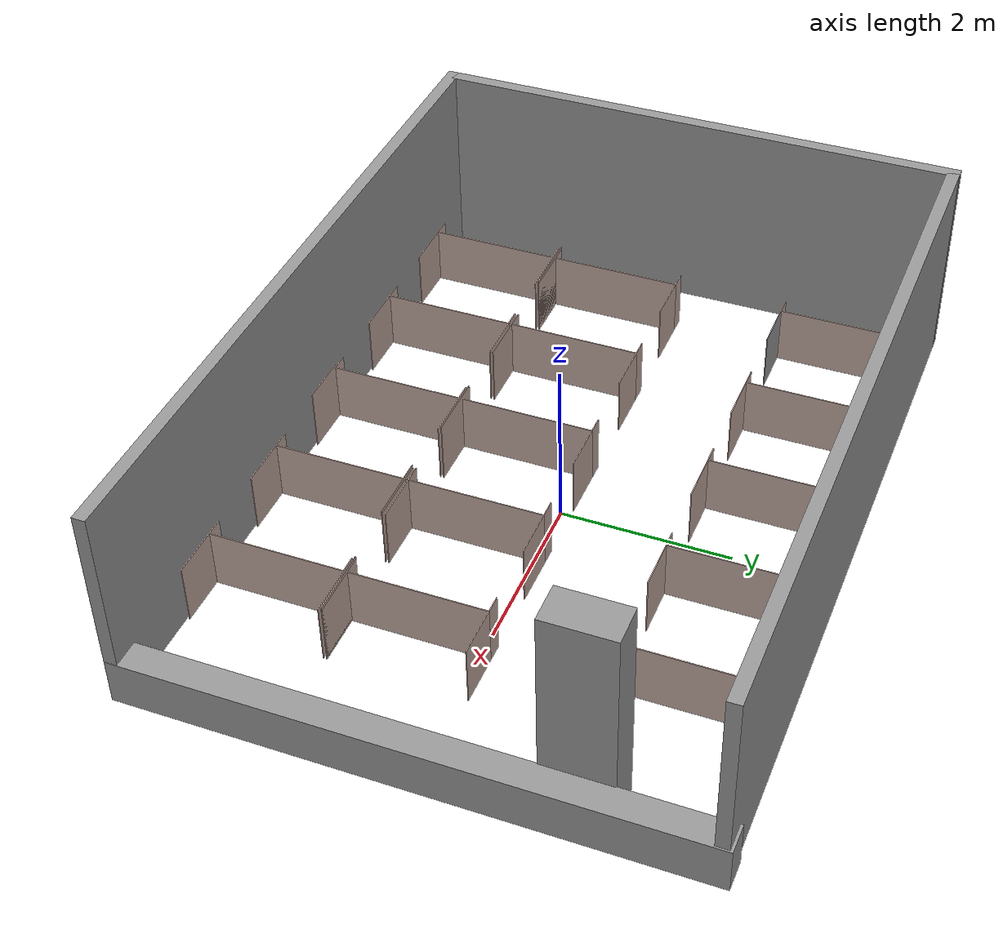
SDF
<?xml version='1.0'?>
<sdf version='1.6'>
  <model name='change_class7'>
    <pose frame=''>-0.212901 0.004877 0 0 -0 0</pose>
    <link name='Wall_10'>
      <collision name='Wall_10_Collision'>
        <geometry>
          <box>
            <size>0.598 0.01 0.715</size>
          </box>
        </geometry>
        <pose frame=''>0 0 0.3575 0 -0 0</pose>
      </collision>
      <visual name='Wall_10_Visual'>
        <pose frame=''>0 0 0.3575 0 -0 0</pose>
        <geometry>
          <box>
            <size>0.598 0.01 0.715</size>
          </box>
        </geometry>
        <material>
          <script>
            <uri>file://media/materials/scripts/gazebo.material</uri>
            <name>Gazebo/Grey</name>
          </script>
          <ambient>0.760784 0.662745 0.627451 1</ambient>
        </material>
      </visual>
      <pose frame=''>-0.159099 1.47212 0 0 -0 0</pose>
    </link>
    <link name='Wall_12'>
      <collision name='Wall_12_Collision'>
        <geometry>
          <box>
            <size>0.598 0.01 0.715</size>
          </box>
        </geometry>
        <pose frame=''>0 0 0.3575 0 -0 0</pose>
      </collision>
      <visual name='Wall_12_Visual'>
        <pose frame=''>0 0 0.3575 0 -0 0</pose>
        <geometry>
          <box>
            <size>0.598 0.01 0.715</size>
          </box>
        </geometry>
        <material>
          <script>
            <uri>file://media/materials/scripts/gazebo.material</uri>
            <name>Gazebo/Grey</name>
          </script>
          <ambient>0.760784 0.662745 0.627451 1</ambient>
        </material>
      </visual>
      <pose frame=''>1.2779 1.47212 0 0 -0 0</pose>
    </link>
    <link name='Wall_138'>
      <collision name='Wall_138_Collision'>
        <geometry>
          <box>
            <size>0.593 0.01 0.715</size>
          </box>
        </geometry>
        <pose frame=''>0 0 0.3575 0 -0 0</pose>
      </collision>
      <visual name='Wall_138_Visual'>
        <pose frame=''>0 0 0.3575 0 -0 0</pose>
        <geometry>
          <box>
            <size>0.593 0.01 0.715</size>
          </box>
        </geometry>
        <material>
          <script>
            <uri>file://media/materials/scripts/gazebo.material</uri>
            <name>Gazebo/Grey</name>
          </script>
          <ambient>0.760784 0.662745 0.627451 1</ambient>
        </material>
      </visual>
      <pose frame=''>-3.0756 3.04612 0 0 -0 0</pose>
    </link>
    <link name='Wall_14'>
      <collision name='Wall_14_Collision'>
        <geometry>
          <box>
            <size>0.61 0.01 0.715</size>
          </box>
        </geometry>
        <pose frame=''>0 0 0.3575 0 -0 0</pose>
      </collision>
      <visual name='Wall_14_Visual'>
        <pose frame=''>0 0 0.3575 0 -0 0</pose>
        <geometry>
          <box>
            <size>0.61 0.01 0.715</size>
          </box>
        </geometry>
        <material>
          <script>
            <uri>file://media/materials/scripts/gazebo.material</uri>
            <name>Gazebo/Grey</name>
          </script>
          <ambient>0.760784 0.662745 0.627451 1</ambient>
        </material>
      </visual>
      <pose frame=''>2.7759 1.47212 0 0 -0 0</pose>
    </link>
    <link name='Wall_140'>
      <collision name='Wall_140_Collision'>
        <geometry>
          <box>
            <size>0.598 0.01 0.715</size>
          </box>
        </geometry>
        <pose frame=''>0 0 0.3575 0 -0 0</pose>
      </collision>
      <visual name='Wall_140_Visual'>
        <pose frame=''>0 0 0.3575 0 -0 0</pose>
        <geometry>
          <box>
            <size>0.598 0.01 0.715</size>
          </box>
        </geometry>
        <material>
          <script>
            <uri>file://media/materials/scripts/gazebo.material</uri>
            <name>Gazebo/Grey</name>
          </script>
          <ambient>0.760784 0.662745 0.627451 1</ambient>
        </material>
      </visual>
      <pose frame=''>-1.6101 3.04612 0 0 -0 0</pose>
    </link>
    <link name='Wall_143'>
      <collision name='Wall_143_Collision'>
        <geometry>
          <box>
            <size>0.598 0.01 0.715</size>
          </box>
        </geometry>
        <pose frame=''>0 0 0.3575 0 -0 0</pose>
      </collision>
      <visual name='Wall_143_Visual'>
        <pose frame=''>0 0 0.3575 0 -0 0</pose>
        <geometry>
          <box>
            <size>0.598 0.01 0.715</size>
          </box>
        </geometry>
        <material>
          <script>
            <uri>file://media/materials/scripts/gazebo.material</uri>
            <name>Gazebo/Grey</name>
          </script>
          <ambient>0.760784 0.662745 0.627451 1</ambient>
        </material>
      </visual>
      <pose frame=''>-0.159099 3.04612 0 0 -0 0</pose>
    </link>
    <link name='Wall_147'>
      <collision name='Wall_147_Collision'>
        <geometry>
          <box>
            <size>0.598 0.01 0.715</size>
          </box>
        </geometry>
        <pose frame=''>0 0 0.3575 0 -0 0</pose>
      </collision>
      <visual name='Wall_147_Visual'>
        <pose frame=''>0 0 0.3575 0 -0 0</pose>
        <geometry>
          <box>
            <size>0.598 0.01 0.715</size>
          </box>
        </geometry>
        <material>
          <script>
            <uri>file://media/materials/scripts/gazebo.material</uri>
            <name>Gazebo/Grey</name>
          </script>
          <ambient>0.760784 0.662745 0.627451 1</ambient>
        </material>
      </visual>
      <pose frame=''>1.2779 3.04612 0 0 -0 0</pose>
    </link>
    <link name='Wall_153'>
      <collision name='Wall_153_Collision'>
        <geometry>
          <box>
            <size>0.609517 0.01 0.715</size>
          </box>
        </geometry>
        <pose frame=''>0 0 0.3575 0 -0 0</pose>
      </collision>
      <visual name='Wall_153_Visual'>
        <pose frame=''>0 0 0.3575 0 -0 0</pose>
        <geometry>
          <box>
            <size>0.609517 0.01 0.715</size>
          </box>
        </geometry>
        <material>
          <script>
            <uri>file://media/materials/scripts/gazebo.material</uri>
            <name>Gazebo/Grey</name>
          </script>
          <ambient>0.760784 0.662745 0.627451 1</ambient>
        </material>
      </visual>
      <pose frame=''>2.7759 3.04612 0 0 -0 0</pose>
    </link>
    <link name='Wall_16'>
      <collision name='Wall_16_Collision'>
        <geometry>
          <box>
            <size>0.598 0.01 0.715</size>
          </box>
        </geometry>
        <pose frame=''>0 0 0.3575 0 -0 0</pose>
      </collision>
      <visual name='Wall_16_Visual'>
        <pose frame=''>0 0 0.3575 0 -0 0</pose>
        <geometry>
          <box>
            <size>0.598 0.01 0.715</size>
          </box>
        </geometry>
        <material>
          <script>
            <uri>file://media/materials/scripts/gazebo.material</uri>
            <name>Gazebo/Grey</name>
          </script>
          <ambient>0.760784 0.662745 0.627451 1</ambient>
        </material>
      </visual>
      <pose frame=''>-3.1331 0.112123 0 0 -0 0</pose>
    </link>
    <link name='Wall_18'>
      <collision name='Wall_18_Collision'>
        <geometry>
          <box>
            <size>0.598 0.01 0.715</size>
          </box>
        </geometry>
        <pose frame=''>0 0 0.3575 0 -0 0</pose>
      </collision>
      <visual name='Wall_18_Visual'>
        <pose frame=''>0 0 0.3575 0 -0 0</pose>
        <geometry>
          <box>
            <size>0.598 0.01 0.715</size>
          </box>
        </geometry>
        <material>
          <script>
            <uri>file://media/materials/scripts/gazebo.material</uri>
            <name>Gazebo/Grey</name>
          </script>
          <ambient>0.760784 0.662745 0.627451 1</ambient>
        </material>
      </visual>
      <pose frame=''>-1.6731 0.112123 0 0 -0 0</pose>
    </link>
    <link name='Wall_193'>
      <collision name='Wall_193_Collision'>
        <geometry>
          <box>
            <size>1.584 0.01 0.715</size>
          </box>
        </geometry>
        <pose frame=''>0 0 0.3575 0 -0 0</pose>
      </collision>
      <visual name='Wall_193_Visual'>
        <pose frame=''>0 0 0.3575 0 -0 0</pose>
        <geometry>
          <box>
            <size>1.584 0.01 0.715</size>
          </box>
        </geometry>
        <material>
          <script>
            <uri>file://media/materials/scripts/gazebo.material</uri>
            <name>Gazebo/Grey</name>
          </script>
          <ambient>0.760784 0.662745 0.627451 1</ambient>
        </material>
      </visual>
      <pose frame=''>-1.9041 2.25912 0 0 0 -1.5708</pose>
    </link>
    <link name='Wall_195'>
      <collision name='Wall_195_Collision'>
        <geometry>
          <box>
            <size>1.584 0.01 0.715</size>
          </box>
        </geometry>
        <pose frame=''>0 0 0.3575 0 -0 0</pose>
      </collision>
      <visual name='Wall_195_Visual'>
        <pose frame=''>0 0 0.3575 0 -0 0</pose>
        <geometry>
          <box>
            <size>1.584 0.01 0.715</size>
          </box>
        </geometry>
        <material>
          <script>
            <uri>file://media/materials/scripts/gazebo.material</uri>
            <name>Gazebo/Grey</name>
          </script>
          <ambient>0.760784 0.662745 0.627451 1</ambient>
        </material>
      </visual>
      <pose frame=''>-0.453099 2.25912 0 0 0 -1.5708</pose>
    </link>
    <link name='Wall_197'>
      <collision name='Wall_197_Collision'>
        <geometry>
          <box>
            <size>1.584 0.01 0.715</size>
          </box>
        </geometry>
        <pose frame=''>0 0 0.3575 0 -0 0</pose>
      </collision>
      <visual name='Wall_197_Visual'>
        <pose frame=''>0 0 0.3575 0 -0 0</pose>
        <geometry>
          <box>
            <size>1.584 0.01 0.715</size>
          </box>
        </geometry>
        <material>
          <script>
            <uri>file://media/materials/scripts/gazebo.material</uri>
            <name>Gazebo/Grey</name>
          </script>
          <ambient>0.760784 0.662745 0.627451 1</ambient>
        </material>
      </visual>
      <pose frame=''>0.983901 2.25912 0 0 0 -1.5708</pose>
    </link>
    <link name='Wall_199'>
      <collision name='Wall_199_Collision'>
        <geometry>
          <box>
            <size>1.58405 0.01 0.715</size>
          </box>
        </geometry>
        <pose frame=''>0 0 0.3575 0 -0 0</pose>
      </collision>
      <visual name='Wall_199_Visual'>
        <pose frame=''>0 0 0.3575 0 -0 0</pose>
        <geometry>
          <box>
            <size>1.58405 0.01 0.715</size>
          </box>
        </geometry>
        <material>
          <script>
            <uri>file://media/materials/scripts/gazebo.material</uri>
            <name>Gazebo/Grey</name>
          </script>
          <ambient>0.760784 0.662745 0.627451 1</ambient>
        </material>
      </visual>
      <pose frame=''>2.4759 2.25912 0 0 0 -1.5708</pose>
    </link>
    <link name='Wall_20'>
      <collision name='Wall_20_Collision'>
        <geometry>
          <box>
            <size>0.598 0.01 0.715</size>
          </box>
        </geometry>
        <pose frame=''>0 0 0.3575 0 -0 0</pose>
      </collision>
      <visual name='Wall_20_Visual'>
        <pose frame=''>0 0 0.3575 0 -0 0</pose>
        <geometry>
          <box>
            <size>0.598 0.01 0.715</size>
          </box>
        </geometry>
        <material>
          <script>
            <uri>file://media/materials/scripts/gazebo.material</uri>
            <name>Gazebo/Grey</name>
          </script>
          <ambient>0.760784 0.662745 0.627451 1</ambient>
        </material>
      </visual>
      <pose frame=''>-0.171099 0.112123 0 0 -0 0</pose>
    </link>
    <link name='Wall_203'>
      <collision name='Wall_203_Collision'>
        <geometry>
          <box>
            <size>3.194 0.01 0.715</size>
          </box>
        </geometry>
        <pose frame=''>0 0 0.3575 0 -0 0</pose>
      </collision>
      <visual name='Wall_203_Visual'>
        <pose frame=''>0 0 0.3575 0 -0 0</pose>
        <geometry>
          <box>
            <size>3.194 0.01 0.715</size>
          </box>
        </geometry>
        <material>
          <script>
            <uri>file://media/materials/scripts/gazebo.material</uri>
            <name>Gazebo/Grey</name>
          </script>
          <ambient>0.760784 0.662745 0.627451 1</ambient>
        </material>
      </visual>
      <pose frame=''>-3.4271 -1.47988 0 0 0 -1.5708</pose>
    </link>
    <link name='Wall_205'>
      <collision name='Wall_205_Collision'>
        <geometry>
          <box>
            <size>3.194 0.01 0.715</size>
          </box>
        </geometry>
        <pose frame=''>0 0 0.3575 0 -0 0</pose>
      </collision>
      <visual name='Wall_205_Visual'>
        <pose frame=''>0 0 0.3575 0 -0 0</pose>
        <geometry>
          <box>
            <size>3.194 0.01 0.715</size>
          </box>
        </geometry>
        <material>
          <script>
            <uri>file://media/materials/scripts/gazebo.material</uri>
            <name>Gazebo/Grey</name>
          </script>
          <ambient>0.760784 0.662745 0.627451 1</ambient>
        </material>
      </visual>
      <pose frame=''>-1.9671 -1.47988 0 0 0 -1.5708</pose>
    </link>
    <link name='Wall_207'>
      <collision name='Wall_207_Collision'>
        <geometry>
          <box>
            <size>3.194 0.01 0.715</size>
          </box>
        </geometry>
        <pose frame=''>0 0 0.3575 0 -0 0</pose>
      </collision>
      <visual name='Wall_207_Visual'>
        <pose frame=''>0 0 0.3575 0 -0 0</pose>
        <geometry>
          <box>
            <size>3.194 0.01 0.715</size>
          </box>
        </geometry>
        <material>
          <script>
            <uri>file://media/materials/scripts/gazebo.material</uri>
            <name>Gazebo/Grey</name>
          </script>
          <ambient>0.760784 0.662745 0.627451 1</ambient>
        </material>
      </visual>
      <pose frame=''>-0.465099 -1.47988 0 0 0 -1.5708</pose>
    </link>
    <link name='Wall_209'>
      <collision name='Wall_209_Collision'>
        <geometry>
          <box>
            <size>3.194 0.01 0.715</size>
          </box>
        </geometry>
        <pose frame=''>0 0 0.3575 0 -0 0</pose>
      </collision>
      <visual name='Wall_209_Visual'>
        <pose frame=''>0 0 0.3575 0 -0 0</pose>
        <geometry>
          <box>
            <size>3.194 0.01 0.715</size>
          </box>
        </geometry>
        <material>
          <script>
            <uri>file://media/materials/scripts/gazebo.material</uri>
            <name>Gazebo/Grey</name>
          </script>
          <ambient>0.760784 0.662745 0.627451 1</ambient>
        </material>
      </visual>
      <pose frame=''>1.0129 -1.47988 0 0 0 -1.5708</pose>
    </link>
    <link name='Wall_211'>
      <collision name='Wall_211_Collision'>
        <geometry>
          <box>
            <size>3.194 0.01 0.715</size>
          </box>
        </geometry>
        <pose frame=''>0 0 0.3575 0 -0 0</pose>
      </collision>
      <visual name='Wall_211_Visual'>
        <pose frame=''>0 0 0.3575 0 -0 0</pose>
        <geometry>
          <box>
            <size>3.194 0.01 0.715</size>
          </box>
        </geometry>
        <material>
          <script>
            <uri>file://media/materials/scripts/gazebo.material</uri>
            <name>Gazebo/Grey</name>
          </script>
          <ambient>0.760784 0.662745 0.627451 1</ambient>
        </material>
      </visual>
      <pose frame=''>2.5269 -1.47988 0 0 0 -1.5708</pose>
    </link>
    <link name='Wall_214'>
      <collision name='Wall_214_Collision'>
        <geometry>
          <box>
            <size>0.01 0.01 0.715</size>
          </box>
        </geometry>
        <pose frame=''>0 0 0.3575 0 -0 0</pose>
      </collision>
      <visual name='Wall_214_Visual'>
        <pose frame=''>0 0 0.3575 0 -0 0</pose>
        <geometry>
          <box>
            <size>0.01 0.01 0.715</size>
          </box>
        </geometry>
        <material>
          <script>
            <uri>file://media/materials/scripts/gazebo.material</uri>
            <name>Gazebo/Grey</name>
          </script>
          <ambient>0.760784 0.662745 0.627451 1</ambient>
        </material>
      </visual>
      <pose frame=''>-3.3671 1.47212 0 0 -0 0</pose>
    </link>
    <link name='Wall_216'>
      <collision name='Wall_216_Collision'>
        <geometry>
          <box>
            <size>0.01 0.01 0.715</size>
          </box>
        </geometry>
        <pose frame=''>0 0 0.3575 0 -0 0</pose>
      </collision>
      <visual name='Wall_216_Visual'>
        <pose frame=''>0 0 0.3575 0 -0 0</pose>
        <geometry>
          <box>
            <size>0.01 0.01 0.715</size>
          </box>
        </geometry>
        <material>
          <script>
            <uri>file://media/materials/scripts/gazebo.material</uri>
            <name>Gazebo/Grey</name>
          </script>
          <ambient>0.760784 0.662745 0.627451 1</ambient>
        </material>
      </visual>
      <pose frame=''>-3.3671 1.47212 0 0 -0 0</pose>
    </link>
    <link name='Wall_218'>
      <collision name='Wall_218_Collision'>
        <geometry>
          <box>
            <size>0.01 0.01 0.715</size>
          </box>
        </geometry>
        <pose frame=''>0 0 0.3575 0 -0 0</pose>
      </collision>
      <visual name='Wall_218_Visual'>
        <pose frame=''>0 0 0.3575 0 -0 0</pose>
        <geometry>
          <box>
            <size>0.01 0.01 0.715</size>
          </box>
        </geometry>
        <material>
          <script>
            <uri>file://media/materials/scripts/gazebo.material</uri>
            <name>Gazebo/Grey</name>
          </script>
          <ambient>1 1 1 1</ambient>
        </material>
      </visual>
      <pose frame=''>-3.3671 3.04612 0 0 -0 0</pose>
    </link>
    <link name='Wall_222'>
      <collision name='Wall_222_Collision'>
        <geometry>
          <box>
            <size>1.584 0.01 0.715</size>
          </box>
        </geometry>
        <pose frame=''>0 0 0.3575 0 -0 0</pose>
      </collision>
      <visual name='Wall_222_Visual'>
        <pose frame=''>0 0 0.3575 0 -0 0</pose>
        <geometry>
          <box>
            <size>1.584 0.01 0.715</size>
          </box>
        </geometry>
        <material>
          <script>
            <uri>file://media/materials/scripts/gazebo.material</uri>
            <name>Gazebo/Grey</name>
          </script>
          <ambient>0.760784 0.662745 0.627451 1</ambient>
        </material>
      </visual>
      <pose frame=''>-3.3671 2.25912 0 0 -0 1.5708</pose>
    </link>
    <link name='Wall_224'>
      <collision name='Wall_224_Collision'>
        <geometry>
          <box>
            <size>0.21 0.01 0.715</size>
          </box>
        </geometry>
        <pose frame=''>0 0 0.3575 0 -0 0</pose>
      </collision>
      <visual name='Wall_224_Visual'>
        <pose frame=''>0 0 0.3575 0 -0 0</pose>
        <geometry>
          <box>
            <size>0.21 0.01 0.715</size>
          </box>
        </geometry>
        <material>
          <script>
            <uri>file://media/materials/scripts/gazebo.material</uri>
            <name>Gazebo/Grey</name>
          </script>
          <ambient>0.760784 0.662745 0.627451 1</ambient>
        </material>
      </visual>
      <pose frame=''>-3.4671 3.04612 0 0 -0 0</pose>
    </link>
    <link name='Wall_226'>
      <collision name='Wall_226_Collision'>
        <geometry>
          <box>
            <size>0.21 0.01 0.715</size>
          </box>
        </geometry>
        <pose frame=''>0 0 0.3575 0 -0 0</pose>
      </collision>
      <visual name='Wall_226_Visual'>
        <pose frame=''>0 0 0.3575 0 -0 0</pose>
        <geometry>
          <box>
            <size>0.21 0.01 0.715</size>
          </box>
        </geometry>
        <material>
          <script>
            <uri>file://media/materials/scripts/gazebo.material</uri>
            <name>Gazebo/Grey</name>
          </script>
          <ambient>0.760784 0.662745 0.627451 1</ambient>
        </material>
      </visual>
      <pose frame=''>-3.4671 1.47212 0 0 -0 0</pose>
    </link>
    <link name='Wall_228'>
      <collision name='Wall_228_Collision'>
        <geometry>
          <box>
            <size>0.21 0.01 0.715</size>
          </box>
        </geometry>
        <pose frame=''>0 0 0.3575 0 -0 0</pose>
      </collision>
      <visual name='Wall_228_Visual'>
        <pose frame=''>0 0 0.3575 0 -0 0</pose>
        <geometry>
          <box>
            <size>0.21 0.01 0.715</size>
          </box>
        </geometry>
        <material>
          <script>
            <uri>file://media/materials/scripts/gazebo.material</uri>
            <name>Gazebo/Grey</name>
          </script>
          <ambient>0.760784 0.662745 0.627451 1</ambient>
        </material>
      </visual>
      <pose frame=''>-2.0041 3.04612 0 0 -0 0</pose>
    </link>
    <link name='Wall_230'>
      <collision name='Wall_230_Collision'>
        <geometry>
          <box>
            <size>0.21 0.01 0.715</size>
          </box>
        </geometry>
        <pose frame=''>0 0 0.3575 0 -0 0</pose>
      </collision>
      <visual name='Wall_230_Visual'>
        <pose frame=''>0 0 0.3575 0 -0 0</pose>
        <geometry>
          <box>
            <size>0.21 0.01 0.715</size>
          </box>
        </geometry>
        <material>
          <script>
            <uri>file://media/materials/scripts/gazebo.material</uri>
            <name>Gazebo/Grey</name>
          </script>
          <ambient>0.760784 0.662745 0.627451 1</ambient>
        </material>
      </visual>
      <pose frame=''>-2.0041 1.47212 0 0 -0 0</pose>
    </link>
    <link name='Wall_232'>
      <collision name='Wall_232_Collision'>
        <geometry>
          <box>
            <size>0.21 0.01 0.715</size>
          </box>
        </geometry>
        <pose frame=''>0 0 0.3575 0 -0 0</pose>
      </collision>
      <visual name='Wall_232_Visual'>
        <pose frame=''>0 0 0.3575 0 -0 0</pose>
        <geometry>
          <box>
            <size>0.21 0.01 0.715</size>
          </box>
        </geometry>
        <material>
          <script>
            <uri>file://media/materials/scripts/gazebo.material</uri>
            <name>Gazebo/Grey</name>
          </script>
          <ambient>0.760784 0.662745 0.627451 1</ambient>
        </material>
      </visual>
      <pose frame=''>-0.553099 1.47212 0 0 -0 0</pose>
    </link>
    <link name='Wall_234'>
      <collision name='Wall_234_Collision'>
        <geometry>
          <box>
            <size>0.21 0.01 0.715</size>
          </box>
        </geometry>
        <pose frame=''>0 0 0.3575 0 -0 0</pose>
      </collision>
      <visual name='Wall_234_Visual'>
        <pose frame=''>0 0 0.3575 0 -0 0</pose>
        <geometry>
          <box>
            <size>0.21 0.01 0.715</size>
          </box>
        </geometry>
        <material>
          <script>
            <uri>file://media/materials/scripts/gazebo.material</uri>
            <name>Gazebo/Grey</name>
          </script>
          <ambient>0.760784 0.662745 0.627451 1</ambient>
        </material>
      </visual>
      <pose frame=''>-0.553099 3.04612 0 0 -0 0</pose>
    </link>
    <link name='Wall_236'>
      <collision name='Wall_236_Collision'>
        <geometry>
          <box>
            <size>0.21 0.01 0.715</size>
          </box>
        </geometry>
        <pose frame=''>0 0 0.3575 0 -0 0</pose>
      </collision>
      <visual name='Wall_236_Visual'>
        <pose frame=''>0 0 0.3575 0 -0 0</pose>
        <geometry>
          <box>
            <size>0.21 0.01 0.715</size>
          </box>
        </geometry>
        <material>
          <script>
            <uri>file://media/materials/scripts/gazebo.material</uri>
            <name>Gazebo/Grey</name>
          </script>
          <ambient>0.760784 0.662745 0.627451 1</ambient>
        </material>
      </visual>
      <pose frame=''>0.883901 1.47212 0 0 -0 0</pose>
    </link>
    <link name='Wall_238'>
      <collision name='Wall_238_Collision'>
        <geometry>
          <box>
            <size>0.21 0.01 0.715</size>
          </box>
        </geometry>
        <pose frame=''>0 0 0.3575 0 -0 0</pose>
      </collision>
      <visual name='Wall_238_Visual'>
        <pose frame=''>0 0 0.3575 0 -0 0</pose>
        <geometry>
          <box>
            <size>0.21 0.01 0.715</size>
          </box>
        </geometry>
        <material>
          <script>
            <uri>file://media/materials/scripts/gazebo.material</uri>
            <name>Gazebo/Grey</name>
          </script>
          <ambient>0.760784 0.662745 0.627451 1</ambient>
        </material>
      </visual>
      <pose frame=''>0.883901 3.04612 0 0 -0 0</pose>
    </link>
    <link name='Wall_24'>
      <collision name='Wall_24_Collision'>
        <geometry>
          <box>
            <size>0.598 0.01 0.715</size>
          </box>
        </geometry>
        <pose frame=''>0 0 0.3575 0 -0 0</pose>
      </collision>
      <visual name='Wall_24_Visual'>
        <pose frame=''>0 0 0.3575 0 -0 0</pose>
        <geometry>
          <box>
            <size>0.598 0.01 0.715</size>
          </box>
        </geometry>
        <material>
          <script>
            <uri>file://media/materials/scripts/gazebo.material</uri>
            <name>Gazebo/Grey</name>
          </script>
          <ambient>0.760784 0.662745 0.627451 1</ambient>
        </material>
      </visual>
      <pose frame=''>2.8209 0.112123 0 0 -0 0</pose>
    </link>
    <link name='Wall_240'>
      <collision name='Wall_240_Collision'>
        <geometry>
          <box>
            <size>0.198 0.01 0.715</size>
          </box>
        </geometry>
        <pose frame=''>0 0 0.3575 0 -0 0</pose>
      </collision>
      <visual name='Wall_240_Visual'>
        <pose frame=''>0 0 0.3575 0 -0 0</pose>
        <geometry>
          <box>
            <size>0.198 0.01 0.715</size>
          </box>
        </geometry>
        <material>
          <script>
            <uri>file://media/materials/scripts/gazebo.material</uri>
            <name>Gazebo/Grey</name>
          </script>
          <ambient>0.760784 0.662745 0.627451 1</ambient>
        </material>
      </visual>
      <pose frame=''>2.3819 1.47212 0 0 -0 0</pose>
    </link>
    <link name='Wall_242'>
      <collision name='Wall_242_Collision'>
        <geometry>
          <box>
            <size>0.21 0.01 0.715</size>
          </box>
        </geometry>
        <pose frame=''>0 0 0.3575 0 -0 0</pose>
      </collision>
      <visual name='Wall_242_Visual'>
        <pose frame=''>0 0 0.3575 0 -0 0</pose>
        <geometry>
          <box>
            <size>0.21 0.01 0.715</size>
          </box>
        </geometry>
        <material>
          <script>
            <uri>file://media/materials/scripts/gazebo.material</uri>
            <name>Gazebo/Grey</name>
          </script>
          <ambient>0.760784 0.662745 0.627451 1</ambient>
        </material>
      </visual>
      <pose frame=''>2.3759 3.04612 0 0 -0 0</pose>
    </link>
    <link name='Wall_244'>
      <collision name='Wall_244_Collision'>
        <geometry>
          <box>
            <size>0.21 0.01 0.715</size>
          </box>
        </geometry>
        <pose frame=''>0 0 0.3575 0 -0 0</pose>
      </collision>
      <visual name='Wall_244_Visual'>
        <pose frame=''>0 0 0.3575 0 -0 0</pose>
        <geometry>
          <box>
            <size>0.21 0.01 0.715</size>
          </box>
        </geometry>
        <material>
          <script>
            <uri>file://media/materials/scripts/gazebo.material</uri>
            <name>Gazebo/Grey</name>
          </script>
          <ambient>0.760784 0.662745 0.627451 1</ambient>
        </material>
      </visual>
      <pose frame=''>-3.5271 0.112123 0 0 -0 0</pose>
    </link>
    <link name='Wall_246'>
      <collision name='Wall_246_Collision'>
        <geometry>
          <box>
            <size>0.21 0.01 0.715</size>
          </box>
        </geometry>
        <pose frame=''>0 0 0.3575 0 -0 0</pose>
      </collision>
      <visual name='Wall_246_Visual'>
        <pose frame=''>0 0 0.3575 0 -0 0</pose>
        <geometry>
          <box>
            <size>0.21 0.01 0.715</size>
          </box>
        </geometry>
        <material>
          <script>
            <uri>file://media/materials/scripts/gazebo.material</uri>
            <name>Gazebo/Grey</name>
          </script>
          <ambient>0.760784 0.662745 0.627451 1</ambient>
        </material>
      </visual>
      <pose frame=''>-3.5271 -3.07188 0 0 -0 0</pose>
    </link>
    <link name='Wall_248'>
      <collision name='Wall_248_Collision'>
        <geometry>
          <box>
            <size>0.21 0.01 0.715</size>
          </box>
        </geometry>
        <pose frame=''>0 0 0.3575 0 -0 0</pose>
      </collision>
      <visual name='Wall_248_Visual'>
        <pose frame=''>0 0 0.3575 0 -0 0</pose>
        <geometry>
          <box>
            <size>0.21 0.01 0.715</size>
          </box>
        </geometry>
        <material>
          <script>
            <uri>file://media/materials/scripts/gazebo.material</uri>
            <name>Gazebo/Grey</name>
          </script>
          <ambient>0.760784 0.662745 0.627451 1</ambient>
        </material>
      </visual>
      <pose frame=''>-2.0671 0.112123 0 0 -0 0</pose>
    </link>
    <link name='Wall_250'>
      <collision name='Wall_250_Collision'>
        <geometry>
          <box>
            <size>0.21 0.01 0.715</size>
          </box>
        </geometry>
        <pose frame=''>0 0 0.3575 0 -0 0</pose>
      </collision>
      <visual name='Wall_250_Visual'>
        <pose frame=''>0 0 0.3575 0 -0 0</pose>
        <geometry>
          <box>
            <size>0.21 0.01 0.715</size>
          </box>
        </geometry>
        <material>
          <script>
            <uri>file://media/materials/scripts/gazebo.material</uri>
            <name>Gazebo/Grey</name>
          </script>
          <ambient>0.760784 0.662745 0.627451 1</ambient>
        </material>
      </visual>
      <pose frame=''>-2.0671 -3.07188 0 0 -0 0</pose>
    </link>
    <link name='Wall_26'>
      <collision name='Wall_26_Collision'>
        <geometry>
          <box>
            <size>0.798 0.01 0.751</size>
          </box>
        </geometry>
        <pose frame=''>0 0 0.3755 0 -0 0</pose>
      </collision>
      <visual name='Wall_26_Visual'>
        <pose frame=''>0 0 0.3755 0 -0 0</pose>
        <geometry>
          <box>
            <size>0.798 0.01 0.751</size>
          </box>
        </geometry>
        <material>
          <script>
            <uri>file://media/materials/scripts/gazebo.material</uri>
            <name>Gazebo/Grey</name>
          </script>
          <ambient>0.760784 0.662745 0.627451 1</ambient>
        </material>
      </visual>
      <pose frame=''>-3.2331 -1.46788 0 0 -0 0</pose>
    </link>
    <link name='Wall_28'>
      <collision name='Wall_28_Collision'>
        <geometry>
          <box>
            <size>0.798 0.01 0.715</size>
          </box>
        </geometry>
        <pose frame=''>0 0 0.3575 0 -0 0</pose>
      </collision>
      <visual name='Wall_28_Visual'>
        <pose frame=''>0 0 0.3575 0 -0 0</pose>
        <geometry>
          <box>
            <size>0.798 0.01 0.715</size>
          </box>
        </geometry>
        <material>
          <script>
            <uri>file://media/materials/scripts/gazebo.material</uri>
            <name>Gazebo/Grey</name>
          </script>
          <ambient>0.760784 0.662745 0.627451 1</ambient>
        </material>
      </visual>
      <pose frame=''>-1.7771 -1.46788 0 0 -0 0</pose>
    </link>
    <link name='Wall_287'>
      <collision name='Wall_287_Collision'>
        <geometry>
          <box>
            <size>0.21 0.01 0.715</size>
          </box>
        </geometry>
        <pose frame=''>0 0 0.3575 0 -0 0</pose>
      </collision>
      <visual name='Wall_287_Visual'>
        <pose frame=''>0 0 0.3575 0 -0 0</pose>
        <geometry>
          <box>
            <size>0.21 0.01 0.715</size>
          </box>
        </geometry>
        <material>
          <script>
            <uri>file://media/materials/scripts/gazebo.material</uri>
            <name>Gazebo/Grey</name>
          </script>
          <ambient>0.760784 0.662745 0.627451 1</ambient>
        </material>
      </visual>
      <pose frame=''>-0.565099 0.112123 0 0 -0 0</pose>
    </link>
    <link name='Wall_289'>
      <collision name='Wall_289_Collision'>
        <geometry>
          <box>
            <size>0.21 0.01 0.715</size>
          </box>
        </geometry>
        <pose frame=''>0 0 0.3575 0 -0 0</pose>
      </collision>
      <visual name='Wall_289_Visual'>
        <pose frame=''>0 0 0.3575 0 -0 0</pose>
        <geometry>
          <box>
            <size>0.21 0.01 0.715</size>
          </box>
        </geometry>
        <material>
          <script>
            <uri>file://media/materials/scripts/gazebo.material</uri>
            <name>Gazebo/Grey</name>
          </script>
          <ambient>0.760784 0.662745 0.627451 1</ambient>
        </material>
      </visual>
      <pose frame=''>-0.565099 -3.07188 0 0 -0 0</pose>
    </link>
    <link name='Wall_291'>
      <collision name='Wall_291_Collision'>
        <geometry>
          <box>
            <size>0.21 0.01 0.715</size>
          </box>
        </geometry>
        <pose frame=''>0 0 0.3575 0 -0 0</pose>
      </collision>
      <visual name='Wall_291_Visual'>
        <pose frame=''>0 0 0.3575 0 -0 0</pose>
        <geometry>
          <box>
            <size>0.21 0.01 0.715</size>
          </box>
        </geometry>
        <material>
          <script>
            <uri>file://media/materials/scripts/gazebo.material</uri>
            <name>Gazebo/Grey</name>
          </script>
          <ambient>0.760784 0.662745 0.627451 1</ambient>
        </material>
      </visual>
      <pose frame=''>0.912901 0.112123 0 0 -0 0</pose>
    </link>
    <link name='Wall_293'>
      <collision name='Wall_293_Collision'>
        <geometry>
          <box>
            <size>0.21 0.01 0.715</size>
          </box>
        </geometry>
        <pose frame=''>0 0 0.3575 0 -0 0</pose>
      </collision>
      <visual name='Wall_293_Visual'>
        <pose frame=''>0 0 0.3575 0 -0 0</pose>
        <geometry>
          <box>
            <size>0.21 0.01 0.715</size>
          </box>
        </geometry>
        <material>
          <script>
            <uri>file://media/materials/scripts/gazebo.material</uri>
            <name>Gazebo/Grey</name>
          </script>
          <ambient>0.760784 0.662745 0.627451 1</ambient>
        </material>
      </visual>
      <pose frame=''>0.912901 -3.07188 0 0 -0 0</pose>
    </link>
    <link name='Wall_295'>
      <collision name='Wall_295_Collision'>
        <geometry>
          <box>
            <size>0.21 0.01 0.715</size>
          </box>
        </geometry>
        <pose frame=''>0 0 0.3575 0 -0 0</pose>
      </collision>
      <visual name='Wall_295_Visual'>
        <pose frame=''>0 0 0.3575 0 -0 0</pose>
        <geometry>
          <box>
            <size>0.21 0.01 0.715</size>
          </box>
        </geometry>
        <material>
          <script>
            <uri>file://media/materials/scripts/gazebo.material</uri>
            <name>Gazebo/Grey</name>
          </script>
          <ambient>0.760784 0.662745 0.627451 1</ambient>
        </material>
      </visual>
      <pose frame=''>2.4269 0.112123 0 0 -0 0</pose>
    </link>
    <link name='Wall_297'>
      <collision name='Wall_297_Collision'>
        <geometry>
          <box>
            <size>0.21 0.01 0.715</size>
          </box>
        </geometry>
        <pose frame=''>0 0 0.3575 0 -0 0</pose>
      </collision>
      <visual name='Wall_297_Visual'>
        <pose frame=''>0 0 0.3575 0 -0 0</pose>
        <geometry>
          <box>
            <size>0.21 0.01 0.715</size>
          </box>
        </geometry>
        <material>
          <script>
            <uri>file://media/materials/scripts/gazebo.material</uri>
            <name>Gazebo/Grey</name>
          </script>
          <ambient>0.760784 0.662745 0.627451 1</ambient>
        </material>
      </visual>
      <pose frame=''>2.4269 -3.07188 0 0 -0 0</pose>
    </link>
    <link name='Wall_299'>
      <collision name='Wall_299_Collision'>
        <geometry>
          <box>
            <size>6.495 0.34 0.555</size>
          </box>
        </geometry>
        <pose frame=''>0 0 0.2775 0 -0 0</pose>
      </collision>
      <visual name='Wall_299_Visual'>
        <pose frame=''>0 0 0.2775 0 -0 0</pose>
        <geometry>
          <box>
            <size>6.495 0.34 0.555</size>
          </box>
        </geometry>
        <material>
          <script>
            <uri>file://media/materials/scripts/gazebo.material</uri>
            <name>Gazebo/Grey</name>
          </script>
          <ambient>0.713726 0.713726 0.713726 1</ambient>
        </material>
      </visual>
      <pose frame=''>4.21471 0.003198 0 0 0 -1.5708</pose>
    </link>
    <link name='Wall_30'>
      <collision name='Wall_30_Collision'>
        <geometry>
          <box>
            <size>0.798 0.01 0.751</size>
          </box>
        </geometry>
        <pose frame=''>0 0 0.3755 0 -0 0</pose>
      </collision>
      <visual name='Wall_30_Visual'>
        <pose frame=''>0 0 0.3755 0 -0 0</pose>
        <geometry>
          <box>
            <size>0.798 0.01 0.751</size>
          </box>
        </geometry>
        <material>
          <script>
            <uri>file://media/materials/scripts/gazebo.material</uri>
            <name>Gazebo/Grey</name>
          </script>
          <ambient>0.760784 0.662745 0.627451 1</ambient>
        </material>
      </visual>
      <pose frame=''>-0.273099 -1.46788 0 0 -0 0</pose>
    </link>
    <link name='Wall_301'>
      <collision name='Wall_301_Collision'>
        <geometry>
          <box>
            <size>0.795 0.45 2.5</size>
          </box>
        </geometry>
        <pose frame=''>0 0 1.25 0 -0 0</pose>
      </collision>
      <visual name='Wall_301_Visual'>
        <pose frame=''>0 0 1.25 0 -0 0</pose>
        <geometry>
          <box>
            <size>0.795 0.45 2.5</size>
          </box>
        </geometry>
        <material>
          <script>
            <uri>file://media/materials/scripts/gazebo.material</uri>
            <name>Gazebo/Grey</name>
          </script>
          <ambient>1 1 1 1</ambient>
        </material>
      </visual>
      <pose frame=''>3.8309 1.62762 0 0 0 -1.5708</pose>
    </link>
    <link name='Wall_316'>
      <collision name='Wall_316_Collision'>
        <geometry>
          <box>
            <size>8.75 0.15 2.5</size>
          </box>
        </geometry>
        <pose frame=''>0 0 1.25 0 -0 0</pose>
      </collision>
      <visual name='Wall_316_Visual'>
        <pose frame=''>0 0 1.25 0 -0 0</pose>
        <geometry>
          <box>
            <size>8.75 0.15 2.5</size>
          </box>
        </geometry>
        <material>
          <script>
            <uri>file://media/materials/scripts/gazebo.material</uri>
            <name>Gazebo/Grey</name>
          </script>
          <ambient>1 1 1 1</ambient>
        </material>
      </visual>
      <pose frame=''>-0.009571 3.14465 0 0 -0 0</pose>
    </link>
    <link name='Wall_318'>
      <collision name='Wall_318_Collision'>
        <geometry>
          <box>
            <size>8.75 0.15 2.5</size>
          </box>
        </geometry>
        <pose frame=''>0 0 1.25 0 -0 0</pose>
      </collision>
      <visual name='Wall_318_Visual'>
        <pose frame=''>0 0 1.25 0 -0 0</pose>
        <geometry>
          <box>
            <size>8.75 0.15 2.5</size>
          </box>
        </geometry>
        <material>
          <script>
            <uri>file://media/materials/scripts/gazebo.material</uri>
            <name>Gazebo/Grey</name>
          </script>
          <ambient>1 1 1 1</ambient>
        </material>
      </visual>
      <pose frame=''>0.001735 -3.17556 0 0 -0 0</pose>
    </link>
    <link name='Wall_32'>
      <collision name='Wall_32_Collision'>
        <geometry>
          <box>
            <size>0.598 0.01 0.715</size>
          </box>
        </geometry>
        <pose frame=''>0 0 0.3575 0 -0 0</pose>
      </collision>
      <visual name='Wall_32_Visual'>
        <pose frame=''>0 0 0.3575 0 -0 0</pose>
        <geometry>
          <box>
            <size>0.598 0.01 0.715</size>
          </box>
        </geometry>
        <material>
          <script>
            <uri>file://media/materials/scripts/gazebo.material</uri>
            <name>Gazebo/Grey</name>
          </script>
          <ambient>0.760784 0.662745 0.627451 1</ambient>
        </material>
      </visual>
      <pose frame=''>1.3069 0.112123 0 0 -0 0</pose>
    </link>
    <link name='Wall_322'>
      <collision name='Wall_322_Collision'>
        <geometry>
          <box>
            <size>6.47023 0.15 2.5</size>
          </box>
        </geometry>
        <pose frame=''>0 0 1.25 0 -0 0</pose>
      </collision>
      <visual name='Wall_322_Visual'>
        <pose frame=''>0 0 1.25 0 -0 0</pose>
        <geometry>
          <box>
            <size>6.47023 0.15 2.5</size>
          </box>
        </geometry>
        <material>
          <script>
            <uri>file://media/materials/scripts/gazebo.material</uri>
            <name>Gazebo/Grey</name>
          </script>
          <ambient>1 1 1 1</ambient>
        </material>
      </visual>
      <pose frame=''>-4.30392 -0.015456 0 0 0 -1.56901</pose>
    </link>
    <link name='Wall_36'>
      <collision name='Wall_36_Collision'>
        <geometry>
          <box>
            <size>0.799 0.01 0.751</size>
          </box>
        </geometry>
        <pose frame=''>0 0 0.3755 0 -0 0</pose>
      </collision>
      <visual name='Wall_36_Visual'>
        <pose frame=''>0 0 0.3755 0 -0 0</pose>
        <geometry>
          <box>
            <size>0.799 0.01 0.751</size>
          </box>
        </geometry>
        <material>
          <script>
            <uri>file://media/materials/scripts/gazebo.material</uri>
            <name>Gazebo/Grey</name>
          </script>
          <ambient>0.760784 0.662745 0.627451 1</ambient>
        </material>
      </visual>
      <pose frame=''>1.2069 -1.50788 0 0 -0 0</pose>
    </link>
    <link name='Wall_38'>
      <collision name='Wall_38_Collision'>
        <geometry>
          <box>
            <size>0.798 0.01 0.751</size>
          </box>
        </geometry>
        <pose frame=''>0 0 0.3755 0 -0 0</pose>
      </collision>
      <visual name='Wall_38_Visual'>
        <pose frame=''>0 0 0.3755 0 -0 0</pose>
        <geometry>
          <box>
            <size>0.798 0.01 0.751</size>
          </box>
        </geometry>
        <material>
          <script>
            <uri>file://media/materials/scripts/gazebo.material</uri>
            <name>Gazebo/Grey</name>
          </script>
          <ambient>0.760784 0.662745 0.627451 1</ambient>
        </material>
      </visual>
      <pose frame=''>2.7209 -1.46788 0 0 -0 0</pose>
    </link>
    <link name='Wall_40'>
      <collision name='Wall_40_Collision'>
        <geometry>
          <box>
            <size>0.798 0.01 0.715</size>
          </box>
        </geometry>
        <pose frame=''>0 0 0.3575 0 -0 0</pose>
      </collision>
      <visual name='Wall_40_Visual'>
        <pose frame=''>0 0 0.3575 0 -0 0</pose>
        <geometry>
          <box>
            <size>0.798 0.01 0.715</size>
          </box>
        </geometry>
        <material>
          <script>
            <uri>file://media/materials/scripts/gazebo.material</uri>
            <name>Gazebo/Grey</name>
          </script>
          <ambient>0.760784 0.662745 0.627451 1</ambient>
        </material>
      </visual>
      <pose frame=''>2.7209 -1.46788 0 0 -0 0</pose>
    </link>
    <link name='Wall_42'>
      <collision name='Wall_42_Collision'>
        <geometry>
          <box>
            <size>0.798 0.01 0.715</size>
          </box>
        </geometry>
        <pose frame=''>0 0 0.3575 0 -0 0</pose>
      </collision>
      <visual name='Wall_42_Visual'>
        <pose frame=''>0 0 0.3575 0 -0 0</pose>
        <geometry>
          <box>
            <size>0.798 0.01 0.715</size>
          </box>
        </geometry>
        <material>
          <script>
            <uri>file://media/materials/scripts/gazebo.material</uri>
            <name>Gazebo/Grey</name>
          </script>
          <ambient>0.760784 0.662745 0.627451 1</ambient>
        </material>
      </visual>
      <pose frame=''>2.7209 -1.50788 0 0 -0 0</pose>
    </link>
    <link name='Wall_44'>
      <collision name='Wall_44_Collision'>
        <geometry>
          <box>
            <size>0.799 0.01 0.751</size>
          </box>
        </geometry>
        <pose frame=''>0 0 0.3755 0 -0 0</pose>
      </collision>
      <visual name='Wall_44_Visual'>
        <pose frame=''>0 0 0.3755 0 -0 0</pose>
        <geometry>
          <box>
            <size>0.799 0.01 0.751</size>
          </box>
        </geometry>
        <material>
          <script>
            <uri>file://media/materials/scripts/gazebo.material</uri>
            <name>Gazebo/Grey</name>
          </script>
          <ambient>0.760784 0.662745 0.627451 1</ambient>
        </material>
      </visual>
      <pose frame=''>1.2069 -1.50788 0 0 -0 0</pose>
    </link>
    <link name='Wall_46'>
      <collision name='Wall_46_Collision'>
        <geometry>
          <box>
            <size>0.798 0.01 0.715</size>
          </box>
        </geometry>
        <pose frame=''>0 0 0.3575 0 -0 0</pose>
      </collision>
      <visual name='Wall_46_Visual'>
        <pose frame=''>0 0 0.3575 0 -0 0</pose>
        <geometry>
          <box>
            <size>0.798 0.01 0.715</size>
          </box>
        </geometry>
        <material>
          <script>
            <uri>file://media/materials/scripts/gazebo.material</uri>
            <name>Gazebo/Grey</name>
          </script>
          <ambient>0.760784 0.662745 0.627451 1</ambient>
        </material>
      </visual>
      <pose frame=''>1.2069 -1.50788 0 0 -0 0</pose>
    </link>
    <link name='Wall_48'>
      <collision name='Wall_48_Collision'>
        <geometry>
          <box>
            <size>0.799 0.01 0.715</size>
          </box>
        </geometry>
        <pose frame=''>0 0 0.3575 0 -0 0</pose>
      </collision>
      <visual name='Wall_48_Visual'>
        <pose frame=''>0 0 0.3575 0 -0 0</pose>
        <geometry>
          <box>
            <size>0.799 0.01 0.715</size>
          </box>
        </geometry>
        <material>
          <script>
            <uri>file://media/materials/scripts/gazebo.material</uri>
            <name>Gazebo/Grey</name>
          </script>
          <ambient>0.760784 0.662745 0.627451 1</ambient>
        </material>
      </visual>
      <pose frame=''>1.2069 -1.46788 0 0 -0 0</pose>
    </link>
    <link name='Wall_53'>
      <collision name='Wall_53_Collision'>
        <geometry>
          <box>
            <size>0.798 0.01 0.715</size>
          </box>
        </geometry>
        <pose frame=''>0 0 0.3575 0 -0 0</pose>
      </collision>
      <visual name='Wall_53_Visual'>
        <pose frame=''>0 0 0.3575 0 -0 0</pose>
        <geometry>
          <box>
            <size>0.798 0.01 0.715</size>
          </box>
        </geometry>
        <material>
          <script>
            <uri>file://media/materials/scripts/gazebo.material</uri>
            <name>Gazebo/Grey</name>
          </script>
          <ambient>0.760784 0.662745 0.627451 1</ambient>
        </material>
      </visual>
      <pose frame=''>-0.273099 -1.46788 0 0 -0 0</pose>
    </link>
    <link name='Wall_55'>
      <collision name='Wall_55_Collision'>
        <geometry>
          <box>
            <size>0.798 0.01 0.715</size>
          </box>
        </geometry>
        <pose frame=''>0 0 0.3575 0 -0 0</pose>
      </collision>
      <visual name='Wall_55_Visual'>
        <pose frame=''>0 0 0.3575 0 -0 0</pose>
        <geometry>
          <box>
            <size>0.798 0.01 0.715</size>
          </box>
        </geometry>
        <material>
          <script>
            <uri>file://media/materials/scripts/gazebo.material</uri>
            <name>Gazebo/Grey</name>
          </script>
          <ambient>0.760784 0.662745 0.627451 1</ambient>
        </material>
      </visual>
      <pose frame=''>-0.273099 -1.50788 0 0 -0 0</pose>
    </link>
    <link name='Wall_57'>
      <collision name='Wall_57_Collision'>
        <geometry>
          <box>
            <size>0.798 0.01 0.715</size>
          </box>
        </geometry>
        <pose frame=''>0 0 0.3575 0 -0 0</pose>
      </collision>
      <visual name='Wall_57_Visual'>
        <pose frame=''>0 0 0.3575 0 -0 0</pose>
        <geometry>
          <box>
            <size>0.798 0.01 0.715</size>
          </box>
        </geometry>
        <material>
          <script>
            <uri>file://media/materials/scripts/gazebo.material</uri>
            <name>Gazebo/Grey</name>
          </script>
          <ambient>0.760784 0.662745 0.627451 1</ambient>
        </material>
      </visual>
      <pose frame=''>-1.7771 -1.50788 0 0 -0 0</pose>
    </link>
    <link name='Wall_59'>
      <collision name='Wall_59_Collision'>
        <geometry>
          <box>
            <size>0.798 0.01 0.715</size>
          </box>
        </geometry>
        <pose frame=''>0 0 0.3575 0 -0 0</pose>
      </collision>
      <visual name='Wall_59_Visual'>
        <pose frame=''>0 0 0.3575 0 -0 0</pose>
        <geometry>
          <box>
            <size>0.798 0.01 0.715</size>
          </box>
        </geometry>
        <material>
          <script>
            <uri>file://media/materials/scripts/gazebo.material</uri>
            <name>Gazebo/Grey</name>
          </script>
          <ambient>0.760784 0.662745 0.627451 1</ambient>
        </material>
      </visual>
      <pose frame=''>-3.2331 -1.46788 0 0 -0 0</pose>
    </link>
    <link name='Wall_6'>
      <collision name='Wall_6_Collision'>
        <geometry>
          <box>
            <size>0.598 0.01 0.715</size>
          </box>
        </geometry>
        <pose frame=''>0 0 0.3575 0 -0 0</pose>
      </collision>
      <visual name='Wall_6_Visual'>
        <pose frame=''>0 0 0.3575 0 -0 0</pose>
        <geometry>
          <box>
            <size>0.598 0.01 0.715</size>
          </box>
        </geometry>
        <material>
          <script>
            <uri>file://media/materials/scripts/gazebo.material</uri>
            <name>Gazebo/Grey</name>
          </script>
          <ambient>0.494118 0.494118 0.494118 1</ambient>
        </material>
      </visual>
      <pose frame=''>-3.0731 1.47212 0 0 -0 0</pose>
    </link>
    <link name='Wall_61'>
      <collision name='Wall_61_Collision'>
        <geometry>
          <box>
            <size>0.798 0.01 0.715</size>
          </box>
        </geometry>
        <pose frame=''>0 0 0.3575 0 -0 0</pose>
      </collision>
      <visual name='Wall_61_Visual'>
        <pose frame=''>0 0 0.3575 0 -0 0</pose>
        <geometry>
          <box>
            <size>0.798 0.01 0.715</size>
          </box>
        </geometry>
        <material>
          <script>
            <uri>file://media/materials/scripts/gazebo.material</uri>
            <name>Gazebo/Grey</name>
          </script>
          <ambient>0.760784 0.662745 0.627451 1</ambient>
        </material>
      </visual>
      <pose frame=''>-3.2331 -1.50788 0 0 -0 0</pose>
    </link>
    <link name='Wall_65'>
      <collision name='Wall_65_Collision'>
        <geometry>
          <box>
            <size>0.598 0.01 0.715</size>
          </box>
        </geometry>
        <pose frame=''>0 0 0.3575 0 -0 0</pose>
      </collision>
      <visual name='Wall_65_Visual'>
        <pose frame=''>0 0 0.3575 0 -0 0</pose>
        <geometry>
          <box>
            <size>0.598 0.01 0.715</size>
          </box>
        </geometry>
        <material>
          <script>
            <uri>file://media/materials/scripts/gazebo.material</uri>
            <name>Gazebo/Grey</name>
          </script>
          <ambient>0.760784 0.662745 0.627451 1</ambient>
        </material>
      </visual>
      <pose frame=''>-3.1331 -3.07188 0 0 -0 0</pose>
    </link>
    <link name='Wall_67'>
      <collision name='Wall_67_Collision'>
        <geometry>
          <box>
            <size>0.598 0.01 0.715</size>
          </box>
        </geometry>
        <pose frame=''>0 0 0.3575 0 -0 0</pose>
      </collision>
      <visual name='Wall_67_Visual'>
        <pose frame=''>0 0 0.3575 0 -0 0</pose>
        <geometry>
          <box>
            <size>0.598 0.01 0.715</size>
          </box>
        </geometry>
        <material>
          <script>
            <uri>file://media/materials/scripts/gazebo.material</uri>
            <name>Gazebo/Grey</name>
          </script>
          <ambient>0.760784 0.662745 0.627451 1</ambient>
        </material>
      </visual>
      <pose frame=''>-1.6731 -3.07188 0 0 -0 0</pose>
    </link>
    <link name='Wall_69'>
      <collision name='Wall_69_Collision'>
        <geometry>
          <box>
            <size>0.596 0.01 0.751</size>
          </box>
        </geometry>
        <pose frame=''>0 0 0.3755 0 -0 0</pose>
      </collision>
      <visual name='Wall_69_Visual'>
        <pose frame=''>0 0 0.3755 0 -0 0</pose>
        <geometry>
          <box>
            <size>0.596 0.01 0.751</size>
          </box>
        </geometry>
        <material>
          <script>
            <uri>file://media/materials/scripts/gazebo.material</uri>
            <name>Gazebo/Grey</name>
          </script>
          <ambient>0.760784 0.662745 0.627451 1</ambient>
        </material>
      </visual>
      <pose frame=''>-0.172099 -3.07188 0 0 -0 0</pose>
    </link>
    <link name='Wall_72'>
      <collision name='Wall_72_Collision'>
        <geometry>
          <box>
            <size>0.598 0.01 0.715</size>
          </box>
        </geometry>
        <pose frame=''>0 0 0.3575 0 -0 0</pose>
      </collision>
      <visual name='Wall_72_Visual'>
        <pose frame=''>0 0 0.3575 0 -0 0</pose>
        <geometry>
          <box>
            <size>0.598 0.01 0.715</size>
          </box>
        </geometry>
        <material>
          <script>
            <uri>file://media/materials/scripts/gazebo.material</uri>
            <name>Gazebo/Grey</name>
          </script>
          <ambient>0.760784 0.662745 0.627451 1</ambient>
        </material>
      </visual>
      <pose frame=''>1.3069 -3.07188 0 0 -0 0</pose>
    </link>
    <link name='Wall_74'>
      <collision name='Wall_74_Collision'>
        <geometry>
          <box>
            <size>0.598 0.01 0.715</size>
          </box>
        </geometry>
        <pose frame=''>0 0 0.3575 0 -0 0</pose>
      </collision>
      <visual name='Wall_74_Visual'>
        <pose frame=''>0 0 0.3575 0 -0 0</pose>
        <geometry>
          <box>
            <size>0.598 0.01 0.715</size>
          </box>
        </geometry>
        <material>
          <script>
            <uri>file://media/materials/scripts/gazebo.material</uri>
            <name>Gazebo/Grey</name>
          </script>
          <ambient>0.760784 0.662745 0.627451 1</ambient>
        </material>
      </visual>
      <pose frame=''>2.8209 -3.07188 0 0 -0 0</pose>
    </link>
    <link name='Wall_8'>
      <collision name='Wall_8_Collision'>
        <geometry>
          <box>
            <size>0.598 0.01 0.715</size>
          </box>
        </geometry>
        <pose frame=''>0 0 0.3575 0 -0 0</pose>
      </collision>
      <visual name='Wall_8_Visual'>
        <pose frame=''>0 0 0.3575 0 -0 0</pose>
        <geometry>
          <box>
            <size>0.598 0.01 0.715</size>
          </box>
        </geometry>
        <material>
          <script>
            <uri>file://media/materials/scripts/gazebo.material</uri>
            <name>Gazebo/Grey</name>
          </script>
          <ambient>0.760784 0.662745 0.627451 1</ambient>
        </material>
      </visual>
      <pose frame=''>-1.6101 1.47212 0 0 -0 0</pose>
    </link>
    <static>1</static>
  </model>
</sdf>
